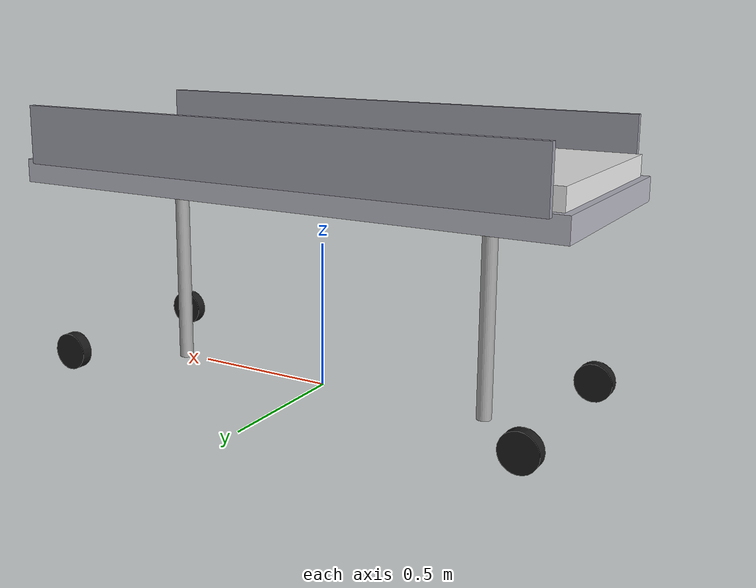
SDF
<?xml version="1.0"?>
<sdf version="1.6">
  <model name="stretcher">
    <static>true</static>
    <link name="bed_frame">
      <pose>0 0 0.72 0 0 0</pose>
      <collision name="c"><geometry><box><size>1.95 0.75 0.08</size></box></geometry></collision>
      <visual name="v">
        <geometry><box><size>1.95 0.75 0.08</size></box></geometry>
        <material><ambient>0.7 0.7 0.75 1</ambient><diffuse>0.7 0.7 0.75 1</diffuse></material>
      </visual>
    </link>
    <link name="mattress">
      <pose>0 0 0.78 0 0 0</pose>
      <collision name="c"><geometry><box><size>1.9 0.7 0.1</size></box></geometry></collision>
      <visual name="v">
        <geometry><box><size>1.9 0.7 0.1</size></box></geometry>
        <material><ambient>0.9 0.9 0.9 1</ambient><diffuse>0.9 0.9 0.9 1</diffuse></material>
      </visual>
    </link>
    <!-- Side rails -->
    <link name="rail_l">
      <pose>0 0.39 0.85 0 0 0</pose>
      <visual name="v"><geometry><box><size>1.85 0.02 0.2</size></box></geometry>
        <material><ambient>0.6 0.6 0.65 1</ambient><diffuse>0.6 0.6 0.65 1</diffuse></material></visual>
    </link>
    <link name="rail_r">
      <pose>0 -0.39 0.85 0 0 0</pose>
      <visual name="v"><geometry><box><size>1.85 0.02 0.2</size></box></geometry>
        <material><ambient>0.6 0.6 0.65 1</ambient><diffuse>0.6 0.6 0.65 1</diffuse></material></visual>
    </link>
    <!-- Scissor legs -->
    <link name="leg_support_1"><pose>0.6 0 0.36 0 0 0</pose>
      <collision name="c"><geometry><cylinder><radius>0.025</radius><length>0.72</length></cylinder></geometry></collision>
      <visual name="v"><geometry><cylinder><radius>0.025</radius><length>0.72</length></cylinder></geometry>
        <material><ambient>0.65 0.65 0.65 1</ambient><diffuse>0.65 0.65 0.65 1</diffuse></material></visual>
    </link>
    <link name="leg_support_2"><pose>-0.6 0 0.36 0 0 0</pose>
      <collision name="c"><geometry><cylinder><radius>0.025</radius><length>0.72</length></cylinder></geometry></collision>
      <visual name="v"><geometry><cylinder><radius>0.025</radius><length>0.72</length></cylinder></geometry>
        <material><ambient>0.65 0.65 0.65 1</ambient><diffuse>0.65 0.65 0.65 1</diffuse></material></visual>
    </link>
    <!-- Wheels (4) -->
    <link name="w1"><pose>0.85 0.33 0.07 1.5708 0 0</pose>
      <visual name="v"><geometry><cylinder><radius>0.065</radius><length>0.04</length></cylinder></geometry>
        <material><ambient>0.1 0.1 0.1 1</ambient><diffuse>0.1 0.1 0.1 1</diffuse></material></visual>
      <collision name="c"><geometry><cylinder><radius>0.065</radius><length>0.04</length></cylinder></geometry></collision>
    </link>
    <link name="w2"><pose>0.85 -0.33 0.07 1.5708 0 0</pose>
      <visual name="v"><geometry><cylinder><radius>0.065</radius><length>0.04</length></cylinder></geometry>
        <material><ambient>0.1 0.1 0.1 1</ambient><diffuse>0.1 0.1 0.1 1</diffuse></material></visual>
      <collision name="c"><geometry><cylinder><radius>0.065</radius><length>0.04</length></cylinder></geometry></collision>
    </link>
    <link name="w3"><pose>-0.85 0.33 0.07 1.5708 0 0</pose>
      <visual name="v"><geometry><cylinder><radius>0.065</radius><length>0.04</length></cylinder></geometry>
        <material><ambient>0.1 0.1 0.1 1</ambient><diffuse>0.1 0.1 0.1 1</diffuse></material></visual>
      <collision name="c"><geometry><cylinder><radius>0.065</radius><length>0.04</length></cylinder></geometry></collision>
    </link>
    <link name="w4"><pose>-0.85 -0.33 0.07 1.5708 0 0</pose>
      <visual name="v"><geometry><cylinder><radius>0.065</radius><length>0.04</length></cylinder></geometry>
        <material><ambient>0.1 0.1 0.1 1</ambient><diffuse>0.1 0.1 0.1 1</diffuse></material></visual>
      <collision name="c"><geometry><cylinder><radius>0.065</radius><length>0.04</length></cylinder></geometry></collision>
    </link>
  </model>
</sdf>
